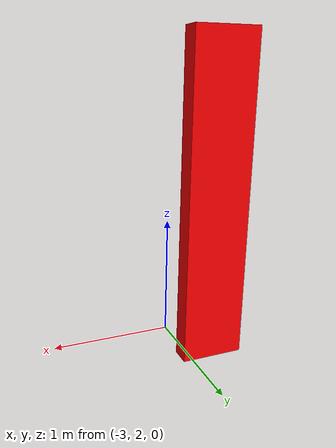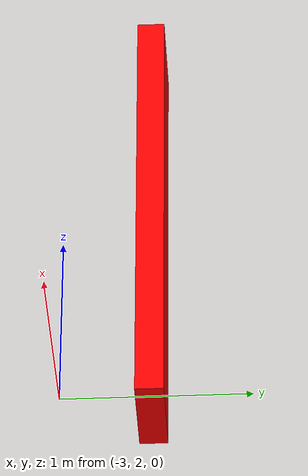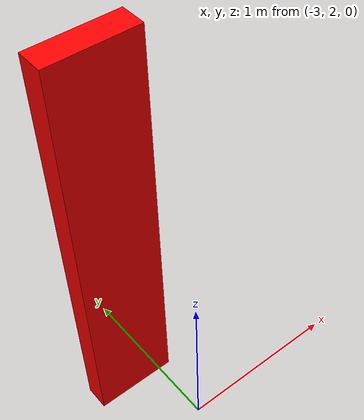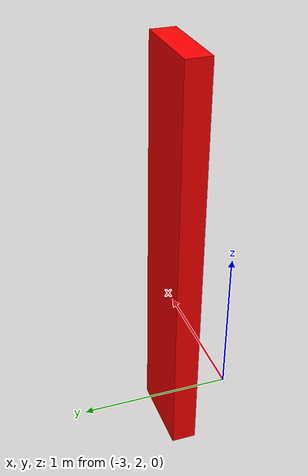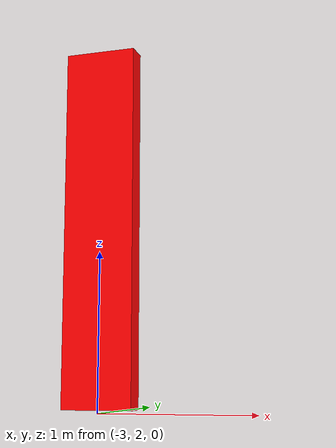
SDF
<?xml version='1.0'?>
<sdf version='1.6'>
  <model name='red_wall'>
    <pose frame=''>-3.177 2.465 0 0 -0 0</pose>
    <link name='Wall_7'>
      <collision name='Wall_7_Collision'>
        <geometry>
          <box>
            <size>0.5 0.15 2.5</size>
          </box>
        </geometry>
        <pose frame=''>0 0 1.25 0 -0 0</pose>
      </collision>
      <visual name='Wall_7_Visual'>
        <pose frame=''>0 0 1.25 0 -0 0</pose>
        <geometry>
          <box>
            <size>0.5 0.15 2.5</size>
          </box>
        </geometry>
        <material>
          <script>
            <uri>file://media/materials/scripts/gazebo.material</uri>
            <name>Gazebo/Grey</name>
          </script>
          <ambient>1 0 0 1</ambient>
        </material>
      </visual>
      <pose frame=''>0 0 0 0 -0 0</pose>
    </link>
    <static>1</static>
  </model>
</sdf>
